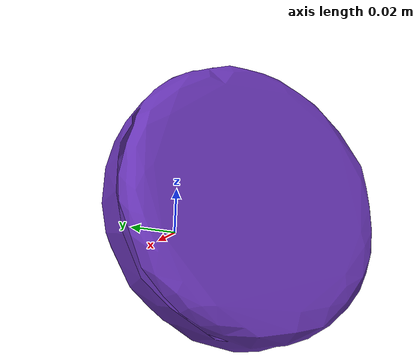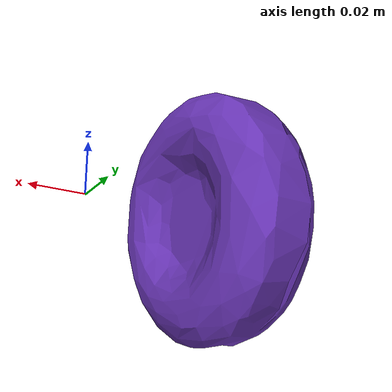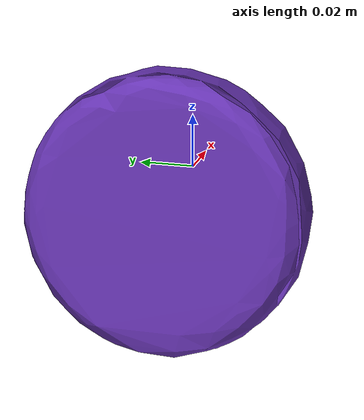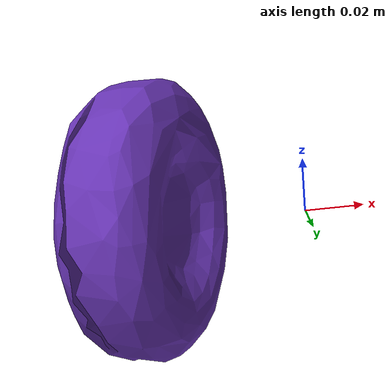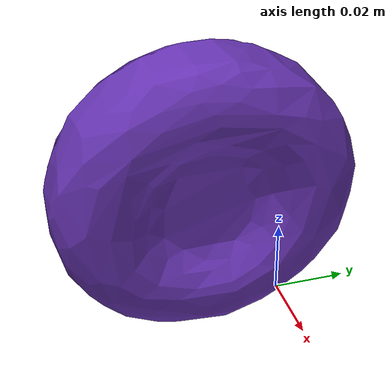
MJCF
<mujoco model="top_watertight_tiny">
  <default>
    <default group="2" type="mesh" contype="0" conaffinity="0">
      <geom group="2" type="mesh" contype="0" conaffinity="0"/>
    </default>
    <default group="3" type="mesh">
      <geom group="3" type="mesh"/>
    </default>
  </default>
  <asset>
    <mesh file="top_watertight_tiny.obj"/>
    <mesh file="top_watertight_tiny_collision_0.obj"/>
    <mesh file="top_watertight_tiny_collision_1.obj"/>
    <mesh file="top_watertight_tiny_collision_2.obj"/>
    <mesh file="top_watertight_tiny_collision_3.obj"/>
    <mesh file="top_watertight_tiny_collision_4.obj"/>
    <mesh file="top_watertight_tiny_collision_5.obj"/>
    <mesh file="top_watertight_tiny_collision_6.obj"/>
    <mesh file="top_watertight_tiny_collision_7.obj"/>
    <mesh file="top_watertight_tiny_collision_8.obj"/>
    <mesh file="top_watertight_tiny_collision_9.obj"/>
    <mesh file="top_watertight_tiny_collision_10.obj"/>
    <mesh file="top_watertight_tiny_collision_11.obj"/>
    <mesh file="top_watertight_tiny_collision_12.obj"/>
    <mesh file="top_watertight_tiny_collision_13.obj"/>
    <mesh file="top_watertight_tiny_collision_14.obj"/>
    <mesh file="top_watertight_tiny_collision_15.obj"/>
    <mesh file="top_watertight_tiny_collision_16.obj"/>
    <mesh file="top_watertight_tiny_collision_17.obj"/>
    <mesh file="top_watertight_tiny_collision_18.obj"/>
    <mesh file="top_watertight_tiny_collision_19.obj"/>
    <mesh file="top_watertight_tiny_collision_20.obj"/>
    <mesh file="top_watertight_tiny_collision_21.obj"/>
    <mesh file="top_watertight_tiny_collision_22.obj"/>
    <mesh file="top_watertight_tiny_collision_23.obj"/>
    <mesh file="top_watertight_tiny_collision_24.obj"/>
    <mesh file="top_watertight_tiny_collision_25.obj"/>
    <mesh file="top_watertight_tiny_collision_26.obj"/>
    <mesh file="top_watertight_tiny_collision_27.obj"/>
    <mesh file="top_watertight_tiny_collision_28.obj"/>
    <mesh file="top_watertight_tiny_collision_29.obj"/>
    <mesh file="top_watertight_tiny_collision_30.obj"/>
    <mesh file="top_watertight_tiny_collision_31.obj"/>
    <mesh file="top_watertight_tiny_collision_32.obj"/>
    <mesh file="top_watertight_tiny_collision_33.obj"/>
    <mesh file="top_watertight_tiny_collision_34.obj"/>
    <mesh file="top_watertight_tiny_collision_35.obj"/>
    <mesh file="top_watertight_tiny_collision_36.obj"/>
    <mesh file="top_watertight_tiny_collision_37.obj"/>
    <mesh file="top_watertight_tiny_collision_38.obj"/>
    <mesh file="top_watertight_tiny_collision_39.obj"/>
    <mesh file="top_watertight_tiny_collision_40.obj"/>
    <mesh file="top_watertight_tiny_collision_41.obj"/>
    <mesh file="top_watertight_tiny_collision_42.obj"/>
    <mesh file="top_watertight_tiny_collision_43.obj"/>
    <mesh file="top_watertight_tiny_collision_44.obj"/>
    <mesh file="top_watertight_tiny_collision_45.obj"/>
    <mesh file="top_watertight_tiny_collision_46.obj"/>
    <mesh file="top_watertight_tiny_collision_47.obj"/>
    <mesh file="top_watertight_tiny_collision_48.obj"/>
    <mesh file="top_watertight_tiny_collision_49.obj"/>
    <mesh file="top_watertight_tiny_collision_50.obj"/>
    <mesh file="top_watertight_tiny_collision_51.obj"/>
    <mesh file="top_watertight_tiny_collision_52.obj"/>
    <mesh file="top_watertight_tiny_collision_53.obj"/>
    <mesh file="top_watertight_tiny_collision_54.obj"/>
    <mesh file="top_watertight_tiny_collision_55.obj"/>
    <mesh file="top_watertight_tiny_collision_56.obj"/>
    <mesh file="top_watertight_tiny_collision_57.obj"/>
    <mesh file="top_watertight_tiny_collision_58.obj"/>
    <mesh file="top_watertight_tiny_collision_59.obj"/>
    <mesh file="top_watertight_tiny_collision_60.obj"/>
    <mesh file="top_watertight_tiny_collision_61.obj"/>
    <mesh file="top_watertight_tiny_collision_62.obj"/>
    <mesh file="top_watertight_tiny_collision_63.obj"/>
    <mesh file="top_watertight_tiny_collision_64.obj"/>
    <mesh file="top_watertight_tiny_collision_65.obj"/>
    <mesh file="top_watertight_tiny_collision_66.obj"/>
    <mesh file="top_watertight_tiny_collision_67.obj"/>
    <mesh file="top_watertight_tiny_collision_68.obj"/>
    <mesh file="top_watertight_tiny_collision_69.obj"/>
    <mesh file="top_watertight_tiny_collision_70.obj"/>
    <mesh file="top_watertight_tiny_collision_71.obj"/>
    <mesh file="top_watertight_tiny_collision_72.obj"/>
    <mesh file="top_watertight_tiny_collision_73.obj"/>
    <mesh file="top_watertight_tiny_collision_74.obj"/>
    <mesh file="top_watertight_tiny_collision_75.obj"/>
    <mesh file="top_watertight_tiny_collision_76.obj"/>
    <mesh file="top_watertight_tiny_collision_77.obj"/>
    <mesh file="top_watertight_tiny_collision_78.obj"/>
    <mesh file="top_watertight_tiny_collision_79.obj"/>
    <mesh file="top_watertight_tiny_collision_80.obj"/>
    <mesh file="top_watertight_tiny_collision_81.obj"/>
    <mesh file="top_watertight_tiny_collision_82.obj"/>
    <mesh file="top_watertight_tiny_collision_83.obj"/>
    <mesh file="top_watertight_tiny_collision_84.obj"/>
    <mesh file="top_watertight_tiny_collision_85.obj"/>
    <mesh file="top_watertight_tiny_collision_86.obj"/>
    <mesh file="top_watertight_tiny_collision_87.obj"/>
    <mesh file="top_watertight_tiny_collision_88.obj"/>
    <mesh file="top_watertight_tiny_collision_89.obj"/>
    <mesh file="top_watertight_tiny_collision_90.obj"/>
    <mesh file="top_watertight_tiny_collision_91.obj"/>
    <mesh file="top_watertight_tiny_collision_92.obj"/>
    <mesh file="top_watertight_tiny_collision_93.obj"/>
    <mesh file="top_watertight_tiny_collision_94.obj"/>
    <mesh file="top_watertight_tiny_collision_95.obj"/>
    <mesh file="top_watertight_tiny_collision_96.obj"/>
    <mesh file="top_watertight_tiny_collision_97.obj"/>
    <mesh file="top_watertight_tiny_collision_98.obj"/>
    <mesh file="top_watertight_tiny_collision_99.obj"/>
    <mesh file="top_watertight_tiny_collision_100.obj"/>
    <mesh file="top_watertight_tiny_collision_101.obj"/>
  </asset>
  <worldbody>
    <body name="top_watertight_tiny">
      <freejoint/>
      <geom mesh="top_watertight_tiny" group="2" type="mesh" rgba="0.4 0.2 0.7 1" contype="0" conaffinity="0"/>
      <geom mesh="top_watertight_tiny_collision_0" rgba="0.766062738003448 0.5244748164000888 0.32984674510797074 1" group="3" type="mesh"/>
      <geom mesh="top_watertight_tiny_collision_1" rgba="0.40572860502263985 0.2552929073115291 0.11887064724577245 1" group="3" type="mesh"/>
      <geom mesh="top_watertight_tiny_collision_2" rgba="0.9670536360694395 0.08168789633020856 0.6553193699167701 1" group="3" type="mesh"/>
      <geom mesh="top_watertight_tiny_collision_3" rgba="0.9840877347133452 0.27295959893743105 0.29552680026406775 1" group="3" type="mesh"/>
      <geom mesh="top_watertight_tiny_collision_4" rgba="0.5039278483407091 0.2234415807497847 0.10487740700408654 1" group="3" type="mesh"/>
      <geom mesh="top_watertight_tiny_collision_5" rgba="0.2505801559534395 0.017056400771879976 0.2974394566987735 1" group="3" type="mesh"/>
      <geom mesh="top_watertight_tiny_collision_6" rgba="0.7364644318811023 0.9440554966382596 0.5542062362356843 1" group="3" type="mesh"/>
      <geom mesh="top_watertight_tiny_collision_7" rgba="0.81042568269233 0.8524555680318481 0.551307093401827 1" group="3" type="mesh"/>
      <geom mesh="top_watertight_tiny_collision_8" rgba="0.18520892535198963 0.6510053850307842 0.6937170622605244 1" group="3" type="mesh"/>
      <geom mesh="top_watertight_tiny_collision_9" rgba="0.03982199266981146 0.7400070166337089 0.45730844449198926 1" group="3" type="mesh"/>
      <geom mesh="top_watertight_tiny_collision_10" rgba="0.12011622826820911 0.9544589102710332 0.311416676180602 1" group="3" type="mesh"/>
      <geom mesh="top_watertight_tiny_collision_11" rgba="0.16702232658001825 0.4874663874547335 0.030343762648396444 1" group="3" type="mesh"/>
      <geom mesh="top_watertight_tiny_collision_12" rgba="0.925926706614749 0.9401390433322846 0.9877394157742075 1" group="3" type="mesh"/>
      <geom mesh="top_watertight_tiny_collision_13" rgba="0.4638442382927238 0.38000940794839355 0.6398130340126214 1" group="3" type="mesh"/>
      <geom mesh="top_watertight_tiny_collision_14" rgba="0.07637061457570749 0.9013816749399639 0.9460388206459165 1" group="3" type="mesh"/>
      <geom mesh="top_watertight_tiny_collision_15" rgba="0.7905031409925123 0.7455078519697366 0.10978817530490736 1" group="3" type="mesh"/>
      <geom mesh="top_watertight_tiny_collision_16" rgba="0.2528065189690465 0.502162637809156 0.5364191260206278 1" group="3" type="mesh"/>
      <geom mesh="top_watertight_tiny_collision_17" rgba="0.48266309587370504 0.009664005804444264 0.8107484817534605 1" group="3" type="mesh"/>
      <geom mesh="top_watertight_tiny_collision_18" rgba="0.6902023715456127 0.4495307690829504 0.3946432736682073 1" group="3" type="mesh"/>
      <geom mesh="top_watertight_tiny_collision_19" rgba="0.07117386187144537 0.04658704767706112 0.22328621161542694 1" group="3" type="mesh"/>
      <geom mesh="top_watertight_tiny_collision_20" rgba="0.5648737339010019 0.05794306002505101 0.23502416672065185 1" group="3" type="mesh"/>
      <geom mesh="top_watertight_tiny_collision_21" rgba="0.4396478908557834 0.8404456798825608 0.014870428479449305 1" group="3" type="mesh"/>
      <geom mesh="top_watertight_tiny_collision_22" rgba="0.9880012464197002 0.842399611553681 0.10380369623136565 1" group="3" type="mesh"/>
      <geom mesh="top_watertight_tiny_collision_23" rgba="0.19102361502996745 0.5213664725966956 0.6555746861004302 1" group="3" type="mesh"/>
      <geom mesh="top_watertight_tiny_collision_24" rgba="0.31610183698002714 0.48811532062518237 0.9643588175072634 1" group="3" type="mesh"/>
      <geom mesh="top_watertight_tiny_collision_25" rgba="0.49521002458138874 0.01393613260356541 0.9743457692730925 1" group="3" type="mesh"/>
      <geom mesh="top_watertight_tiny_collision_26" rgba="0.21657272384571646 0.09261496547618697 0.18577644264752524 1" group="3" type="mesh"/>
      <geom mesh="top_watertight_tiny_collision_27" rgba="0.7279818359824315 0.5998763470111916 0.9096653241005807 1" group="3" type="mesh"/>
      <geom mesh="top_watertight_tiny_collision_28" rgba="0.28053288448605607 0.828501973409408 0.7963958720897343 1" group="3" type="mesh"/>
      <geom mesh="top_watertight_tiny_collision_29" rgba="0.2682587504127536 0.40919023378275 0.1052492031150356 1" group="3" type="mesh"/>
      <geom mesh="top_watertight_tiny_collision_30" rgba="0.031891019959443656 0.4917932020808724 0.7194528210370378 1" group="3" type="mesh"/>
      <geom mesh="top_watertight_tiny_collision_31" rgba="0.7061310549969372 0.11331235357441083 0.4423315314571755 1" group="3" type="mesh"/>
      <geom mesh="top_watertight_tiny_collision_32" rgba="0.25550175254240803 0.915314137507694 0.6072643730984377 1" group="3" type="mesh"/>
      <geom mesh="top_watertight_tiny_collision_33" rgba="0.36076488262306394 0.737822019497504 0.4257168902785081 1" group="3" type="mesh"/>
      <geom mesh="top_watertight_tiny_collision_34" rgba="0.1961613336822734 0.9885047819959446 0.0930364469811189 1" group="3" type="mesh"/>
      <geom mesh="top_watertight_tiny_collision_35" rgba="0.08386802840526597 0.6334524043926351 0.4466166407382841 1" group="3" type="mesh"/>
      <geom mesh="top_watertight_tiny_collision_36" rgba="0.7118508177444862 0.04546626271104526 0.9779500720098097 1" group="3" type="mesh"/>
      <geom mesh="top_watertight_tiny_collision_37" rgba="0.622769938492074 0.3632181524992102 0.3830075725089892 1" group="3" type="mesh"/>
      <geom mesh="top_watertight_tiny_collision_38" rgba="0.5934329483810608 0.3765499892055243 0.38523918167735816 1" group="3" type="mesh"/>
      <geom mesh="top_watertight_tiny_collision_39" rgba="0.5434592996019427 0.5391082453240993 0.6302395043787604 1" group="3" type="mesh"/>
      <geom mesh="top_watertight_tiny_collision_40" rgba="0.5697165720536764 0.9706201333402197 0.249458687547101 1" group="3" type="mesh"/>
      <geom mesh="top_watertight_tiny_collision_41" rgba="0.07071623207355604 0.6014331105328383 0.7905301260631655 1" group="3" type="mesh"/>
      <geom mesh="top_watertight_tiny_collision_42" rgba="0.20455370119160432 0.23808799231285005 0.24719929995518108 1" group="3" type="mesh"/>
      <geom mesh="top_watertight_tiny_collision_43" rgba="0.3073410307040463 0.6263163384976749 0.44503859653351097 1" group="3" type="mesh"/>
      <geom mesh="top_watertight_tiny_collision_44" rgba="0.20344256647293657 0.09460162057505683 0.98103556485487 1" group="3" type="mesh"/>
      <geom mesh="top_watertight_tiny_collision_45" rgba="0.007036689713350919 0.07215069853938394 0.6368103837627643 1" group="3" type="mesh"/>
      <geom mesh="top_watertight_tiny_collision_46" rgba="0.5968774594864412 0.8894835406489247 0.9482924963913232 1" group="3" type="mesh"/>
      <geom mesh="top_watertight_tiny_collision_47" rgba="0.09192115948937962 0.14768145400908383 0.0720050996219489 1" group="3" type="mesh"/>
      <geom mesh="top_watertight_tiny_collision_48" rgba="0.6072222051483686 0.6055076811407446 0.6900966214340781 1" group="3" type="mesh"/>
      <geom mesh="top_watertight_tiny_collision_49" rgba="0.04640364395568852 0.9466460078442872 0.24601079275307491 1" group="3" type="mesh"/>
      <geom mesh="top_watertight_tiny_collision_50" rgba="0.9926826740678116 0.4998269150089515 0.570667213414746 1" group="3" type="mesh"/>
      <geom mesh="top_watertight_tiny_collision_51" rgba="0.7541408838825524 0.43457935948710735 0.9850185176437907 1" group="3" type="mesh"/>
      <geom mesh="top_watertight_tiny_collision_52" rgba="0.8625277026637512 0.463273546908229 0.6892786728623745 1" group="3" type="mesh"/>
      <geom mesh="top_watertight_tiny_collision_53" rgba="0.31226790768247603 0.5448957107150176 0.32215540861781455 1" group="3" type="mesh"/>
      <geom mesh="top_watertight_tiny_collision_54" rgba="0.5611037777207905 0.42002200982636895 0.7247564701869674 1" group="3" type="mesh"/>
      <geom mesh="top_watertight_tiny_collision_55" rgba="0.6214403913014905 0.5211280258351159 0.02565585170183382 1" group="3" type="mesh"/>
      <geom mesh="top_watertight_tiny_collision_56" rgba="0.8096502686321072 0.15962423198506304 0.7410544344519481 1" group="3" type="mesh"/>
      <geom mesh="top_watertight_tiny_collision_57" rgba="0.8384323661247944 0.5925970691280599 0.44228500386991787 1" group="3" type="mesh"/>
      <geom mesh="top_watertight_tiny_collision_58" rgba="0.7818943473942465 0.5400685159215334 0.24589594366431167 1" group="3" type="mesh"/>
      <geom mesh="top_watertight_tiny_collision_59" rgba="0.4728134375964608 0.1915563981510522 0.2844912731592302 1" group="3" type="mesh"/>
      <geom mesh="top_watertight_tiny_collision_60" rgba="0.38370445710004253 0.7598172585820234 0.6127347866609297 1" group="3" type="mesh"/>
      <geom mesh="top_watertight_tiny_collision_61" rgba="0.14425926989740345 0.5070797881950182 0.7586004573133909 1" group="3" type="mesh"/>
      <geom mesh="top_watertight_tiny_collision_62" rgba="0.777563853229391 0.24710160615934895 0.5665668260271912 1" group="3" type="mesh"/>
      <geom mesh="top_watertight_tiny_collision_63" rgba="0.7680113777679826 0.6529091943820098 0.3849261394034945 1" group="3" type="mesh"/>
      <geom mesh="top_watertight_tiny_collision_64" rgba="0.9284855679707877 0.4339629879657867 0.9739937947755206 1" group="3" type="mesh"/>
      <geom mesh="top_watertight_tiny_collision_65" rgba="0.5106582197535642 0.5671929360599725 0.2817387721771073 1" group="3" type="mesh"/>
      <geom mesh="top_watertight_tiny_collision_66" rgba="0.4799028166889082 0.34754185959079364 0.10608907113621546 1" group="3" type="mesh"/>
      <geom mesh="top_watertight_tiny_collision_67" rgba="0.11880076091281244 0.36962621823474584 0.49758739435182264 1" group="3" type="mesh"/>
      <geom mesh="top_watertight_tiny_collision_68" rgba="0.194121376116147 0.00973883137517173 0.9863274193465841 1" group="3" type="mesh"/>
      <geom mesh="top_watertight_tiny_collision_69" rgba="0.03286881956047638 0.8670640149306099 0.4856455922882572 1" group="3" type="mesh"/>
      <geom mesh="top_watertight_tiny_collision_70" rgba="0.46914902196185504 0.9694085669585275 0.7086259283374221 1" group="3" type="mesh"/>
      <geom mesh="top_watertight_tiny_collision_71" rgba="0.034272224434495735 0.4029961514515893 0.024987731070421404 1" group="3" type="mesh"/>
      <geom mesh="top_watertight_tiny_collision_72" rgba="0.7179747491900271 0.3129834049308501 0.07674816624276748 1" group="3" type="mesh"/>
      <geom mesh="top_watertight_tiny_collision_73" rgba="0.5411831721589564 0.345582202520308 0.18504432841262797 1" group="3" type="mesh"/>
      <geom mesh="top_watertight_tiny_collision_74" rgba="0.39959305663876454 0.26607160041944533 0.6481987635796882 1" group="3" type="mesh"/>
      <geom mesh="top_watertight_tiny_collision_75" rgba="0.716609137450175 0.020970301525906287 0.9380308454658973 1" group="3" type="mesh"/>
      <geom mesh="top_watertight_tiny_collision_76" rgba="0.9285606611486685 0.356202831923795 0.8289396615898165 1" group="3" type="mesh"/>
      <geom mesh="top_watertight_tiny_collision_77" rgba="0.8422903370867656 0.6879233433163012 0.3430338251249765 1" group="3" type="mesh"/>
      <geom mesh="top_watertight_tiny_collision_78" rgba="0.5833878553742299 0.39008369559454603 0.2714817811896413 1" group="3" type="mesh"/>
      <geom mesh="top_watertight_tiny_collision_79" rgba="0.5347311951560618 0.7148515240601688 0.28439338352370025 1" group="3" type="mesh"/>
      <geom mesh="top_watertight_tiny_collision_80" rgba="0.8466955467936178 0.9607677596417027 0.8943622141427606 1" group="3" type="mesh"/>
      <geom mesh="top_watertight_tiny_collision_81" rgba="0.6735377366489573 0.7236801293502225 0.1442810202003878 1" group="3" type="mesh"/>
      <geom mesh="top_watertight_tiny_collision_82" rgba="0.6729775795046256 0.46408411230140856 0.28206064030493805 1" group="3" type="mesh"/>
      <geom mesh="top_watertight_tiny_collision_83" rgba="0.9252873923866315 0.038511566794153684 0.5330264255953352 1" group="3" type="mesh"/>
      <geom mesh="top_watertight_tiny_collision_84" rgba="0.534610885410024 0.23060298778214017 0.26686772096409417 1" group="3" type="mesh"/>
      <geom mesh="top_watertight_tiny_collision_85" rgba="0.15182260047606622 0.8970640846944409 0.14801059759306745 1" group="3" type="mesh"/>
      <geom mesh="top_watertight_tiny_collision_86" rgba="0.3278849006067085 0.5488368530963298 0.585948138133389 1" group="3" type="mesh"/>
      <geom mesh="top_watertight_tiny_collision_87" rgba="0.7356578369975116 0.6339404271464695 0.37323297965588653 1" group="3" type="mesh"/>
      <geom mesh="top_watertight_tiny_collision_88" rgba="0.29901182213301913 0.6400853454797043 0.7730882651308508 1" group="3" type="mesh"/>
      <geom mesh="top_watertight_tiny_collision_89" rgba="0.16183281859202148 0.4312639711328502 0.7584859677498301 1" group="3" type="mesh"/>
      <geom mesh="top_watertight_tiny_collision_90" rgba="0.9596912428200661 0.4736789921775223 0.7666473731140382 1" group="3" type="mesh"/>
      <geom mesh="top_watertight_tiny_collision_91" rgba="0.7988064842880859 0.11451514509012817 0.6900634634371601 1" group="3" type="mesh"/>
      <geom mesh="top_watertight_tiny_collision_92" rgba="0.5376938510797705 0.2469375823704837 0.836310137785893 1" group="3" type="mesh"/>
      <geom mesh="top_watertight_tiny_collision_93" rgba="0.7815712083018629 0.9583410258921493 0.00934326754949677 1" group="3" type="mesh"/>
      <geom mesh="top_watertight_tiny_collision_94" rgba="0.6865696337621349 0.5758350161791346 0.10096036156860722 1" group="3" type="mesh"/>
      <geom mesh="top_watertight_tiny_collision_95" rgba="0.2151981649161726 0.5362189143455047 0.3869588402330587 1" group="3" type="mesh"/>
      <geom mesh="top_watertight_tiny_collision_96" rgba="0.16930351316012704 0.944221479567017 0.2601734117623383 1" group="3" type="mesh"/>
      <geom mesh="top_watertight_tiny_collision_97" rgba="0.04321973536507917 0.739811602192618 0.2976922174252131 1" group="3" type="mesh"/>
      <geom mesh="top_watertight_tiny_collision_98" rgba="0.8493820431782029 0.04416679955853675 0.34878826664030627 1" group="3" type="mesh"/>
      <geom mesh="top_watertight_tiny_collision_99" rgba="0.08655273721586287 0.0012907891277832428 0.8395964040646434 1" group="3" type="mesh"/>
      <geom mesh="top_watertight_tiny_collision_100" rgba="0.15289371248565253 8.835194809164726e-05 0.15510970773827815 1" group="3" type="mesh"/>
      <geom mesh="top_watertight_tiny_collision_101" rgba="0.0459720262999499 0.16591236778216312 0.7441174662346438 1" group="3" type="mesh"/>
    </body>
  </worldbody>
</mujoco>
